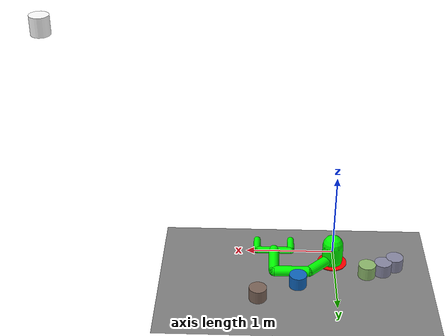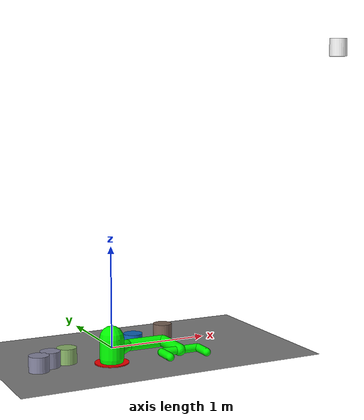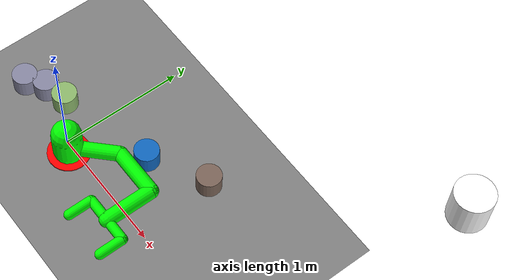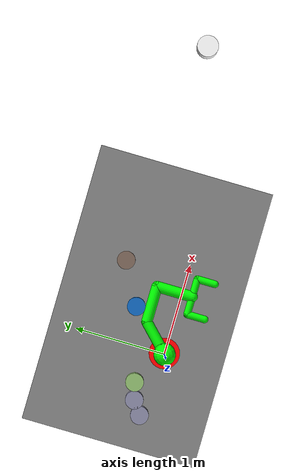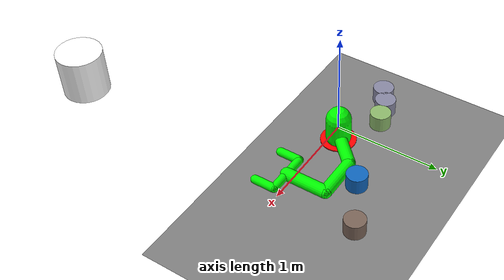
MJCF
<mujoco model="arm3d">
    <compiler inertiafromgeom="true" angle="radian" coordinate="local" />
    <option timestep="0.01" gravity="0 0 0" iterations="20" integrator="Euler" />

    <default>
        <joint armature='0.04' damping="1" limited="true"/>
        <geom friction=".8 .1 .1" density="300" margin="0.002" condim="1" contype="1" conaffinity="1"/>
    </default>

    <worldbody>
        <light diffuse=".5 .5 .5" pos="0 0 3" dir="0 0 -1"/>
        <geom type="plane" pos="0 0.5 -0.15" size="2 2 0.1" contype="1" conaffinity="1"/>

        <body name="cam1" pos="3 0.5 3">
            <freejoint name="free1"/>
            <geom rgba="1. 1. 1. 1" type="cylinder" size="0.1 0.1 0.1" density='0.00001' contype="1" conaffinity="1"/>
            <camera name="view1" mode="targetbodycom" target="goal" pos="0 0 0" euler="0 0.8 1.57"/>
        </body>

        <body name="palm" pos="0 0 0">
            <geom rgba="0. 1. 0. 1" type="capsule" fromto="0 0 -0.1 0 0 0.1" size="0.12"/>
            <body name="proximal_1" pos="0 0 -0.075" axisangle="0 0 1 0.785">
                <joint name="proximal_j_1" type="hinge" pos="0 0 0" axis="0 0 1" range="-2.5 2.5" damping="1.0" />
                <geom rgba="0. 1. 0. 1" type="capsule"  fromto="0 0 0 0.4 0 0" size="0.06" contype="1" conaffinity="1"/>
                <body name="distal_1" pos="0.4 0 0" axisangle="0 0 1 -0.785">
                    <joint name="distal_j_1" type="hinge" pos="0 0 0" axis="0 0 1" range="-2.3213 2.3" damping="1.0"/>
                    <geom rgba="0. 1. 0. 1" type="capsule"  fromto="0 0 0 0.4 0 0" size="0.06" contype="1" conaffinity="1"/>
                    <body name="distal_2" pos="0.4 0 0" axisangle="0 0 1 -1.57">
                        <joint name="distal_j_2" type="hinge" pos="0 0 0" axis="0 0 1" range="-2.3213 2.3" damping="1.0"/>
                        <geom rgba="0. 1. 0. 1" type="capsule" fromto="0 0 0 0.4 0 0" size="0.06" contype="1" conaffinity="1"/>
                        <body name="distal_4" pos="0.4 0 0">
                            <site name="tip arml" pos="0.1 -0.2 0" size="0.01" />
                            <site name="tip armr" pos="0.1 0.2 0" size="0.01" />
                            <geom rgba="0. 1. 0. 1" type="capsule" fromto="0 -0.2 0 0 0.2 0" size="0.04" contype="1" conaffinity="1" />
                            <geom rgba="0. 1. 0. 1" type="capsule" fromto="0 -0.2 0 0.2 -0.2 0" size="0.04" contype="1" conaffinity="1" />
                            <geom rgba="0. 1. 0. 1" type="capsule" fromto="0 0.2 0 0.2 0.2 0" size="0.04" contype="1" conaffinity="1" />
                        </body>
                    </body>
                </body>
            </body>
        </body>

        <body name="object" pos="0 0 -0.1">
            <geom rgba="1. 1. 1. 1" type="cylinder" size="0.1 0.1 0.1" density='0.00001' contype="1" conaffinity="1"/>
            <joint name="obj_slidey" type="slide" pos="0.025 0.025 0.025" axis="0 1 0" range="-10.3213 10.3" damping="0.5"/>
            <joint name="obj_slidex" type="slide" pos="0.025 0.025 0.025" axis="1 0 0" range="-10.3213 10.3" damping="0.5"/>
        </body>

        <body name="goal" pos="0 0 -0.145">
            <geom rgba="1. 0. 0. 1" type="cylinder" size="0.17 0.005 0.2" density='0.00001' contype="0" conaffinity="0"/>
            <joint name="goal_slidey" type="slide" pos="0 0 0" axis="0 1 0" range="-10.3213 10.3" damping="0.5"/>
            <joint name="goal_slidex" type="slide" pos="0 0 0" axis="1 0 0" range="-10.3213 10.3" damping="0.5"/>
        </body>

    <geom conaffinity="0" contype="0" density="0.00001" name="object0" pos="-0.384949 0.226851 -0.1" rgba="0.551315 0.719469 0.423106 1" size="0.1 0.1 0.1" type="cylinder" />
    <geom conaffinity="0" contype="0" density="0.00001" name="object1" pos="0.865376 0.684830 -0.1" rgba="0.480932 0.392118 0.343178 1" size="0.1 0.1 0.1" type="cylinder" />
    <geom conaffinity="0" contype="0" density="0.00001" name="object2" pos="0.412289 0.438572 -0.1" rgba="0.059678 0.398044 0.737995 1" size="0.1 0.1 0.1" type="cylinder" />
    <geom conaffinity="0" contype="0" density="0.00001" name="object3" pos="-0.571515 0.175452 -0.1" rgba="0.531551 0.531828 0.634401 1" size="0.1 0.1 0.1" type="cylinder" />
    <geom conaffinity="0" contype="0" density="0.00001" name="object4" pos="-0.71515 0.075452 -0.1" rgba="0.531551 0.531828 0.634401 1" size="0.1 0.1 0.1" type="cylinder" />
    </worldbody>

    <actuator>
        <motor joint="proximal_j_1" ctrlrange="-3 3" ctrllimited="true"/>
        <motor joint="distal_j_1" ctrlrange="-3 3" ctrllimited="true"/>
        <motor joint="distal_j_2" ctrlrange="-3 3" ctrllimited="true"/>
    </actuator>
</mujoco>
